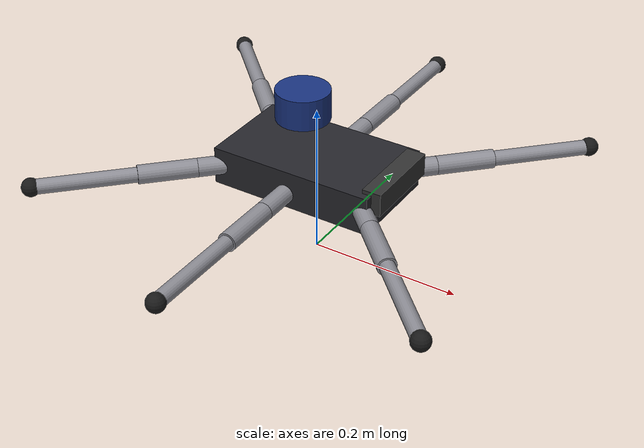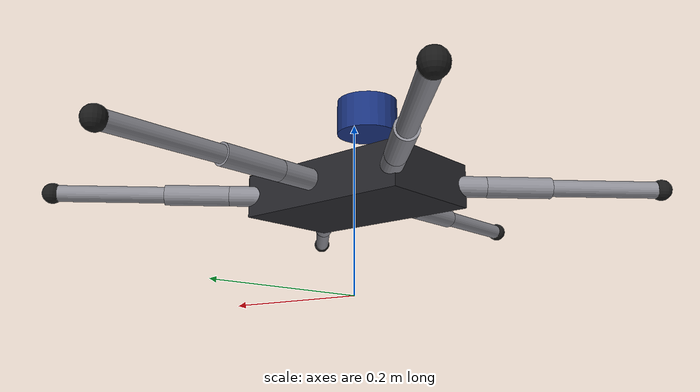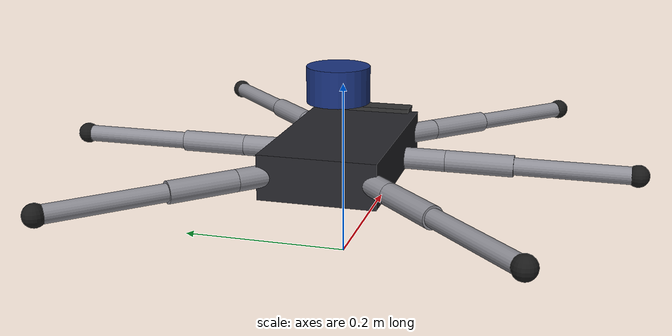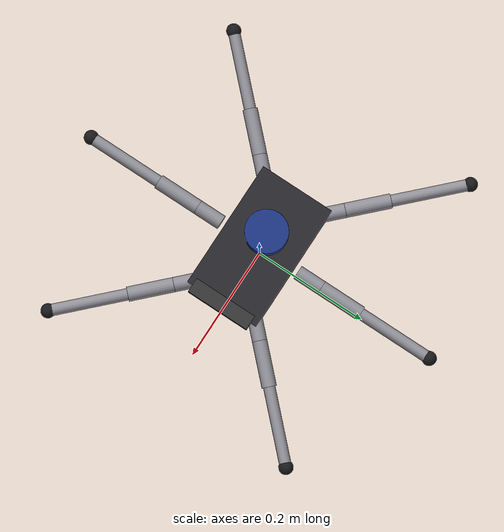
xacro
<?xml version="1.0"?>
<robot name="jethexa" xmlns:xacro="http://www.ros.org/wiki/xacro">

  <xacro:include filename="$(find jethexa_sim)/urdf/props.xacro"/>
  <xacro:include filename="$(find jethexa_sim)/urdf/leg.xacro"/>
  <xacro:include filename="$(find jethexa_sim)/urdf/sensors.xacro"/>

  <!-- ros2_control interface macros (defined before first use) -->
    <xacro:macro name="joint_iface" params="jname">
    <joint name="${jname}">
      <command_interface name="position">
        <param name="min">${-joint_limit}</param>
        <param name="max">${joint_limit}</param>
      </command_interface>
      <state_interface name="position"/>
      <state_interface name="velocity"/>
      <state_interface name="effort"/>
    </joint>
  </xacro:macro>
  <xacro:macro name="leg_ifaces" params="leg">
    <xacro:joint_iface jname="${leg}_coxa_joint"/>
    <xacro:joint_iface jname="${leg}_femur_joint"/>
    <xacro:joint_iface jname="${leg}_tibia_joint"/>
  </xacro:macro>

  <link name="base_footprint"/>

  <joint name="base_footprint_to_base" type="fixed">
    <parent link="base_footprint"/>
    <child link="base_link"/>
    <origin xyz="0 0 ${stand_height}" rpy="0 0 0"/>
  </joint>

  <link name="base_link">
    <visual>
      <geometry><box size="${body_x} ${body_y} ${body_z}"/></geometry>
      <material name="jethexa_body"><color rgba="0.15 0.15 0.17 1"/></material>
    </visual>
    <collision>
      <geometry><box size="${body_x} ${body_y} ${body_z}"/></geometry>
    </collision>
    <xacro:box_inertial m="${body_mass}" x="${body_x}" y="${body_y}" z="${body_z}"/>
  </link>

  <!-- leg name, mount x, mount y, mount yaw -->
  <xacro:leg name="lf" x="${mount_x}"  y="${mount_y}"  yaw="${radians(45)}"/>
  <xacro:leg name="lm" x="0"           y="${mid_y}"    yaw="${radians(90)}"/>
  <xacro:leg name="lr" x="${-mount_x}" y="${mount_y}"  yaw="${radians(135)}"/>
  <xacro:leg name="rf" x="${mount_x}"  y="${-mount_y}" yaw="${radians(-45)}"/>
  <xacro:leg name="rm" x="0"           y="${-mid_y}"   yaw="${radians(-90)}"/>
  <xacro:leg name="rr" x="${-mount_x}" y="${-mount_y}" yaw="${radians(-135)}"/>

  <xacro:jethexa_sensors/>

  <!-- ros2_control: 18 position-commanded joints -->
  <ros2_control name="JetHexaSystem" type="system">
    <hardware>
      <plugin>gz_ros2_control/GazeboSimSystem</plugin>
    </hardware>
    <xacro:leg_ifaces leg="lf"/>
    <xacro:leg_ifaces leg="lm"/>
    <xacro:leg_ifaces leg="lr"/>
    <xacro:leg_ifaces leg="rf"/>
    <xacro:leg_ifaces leg="rm"/>
    <xacro:leg_ifaces leg="rr"/>
  </ros2_control>

  <gazebo>
    <plugin filename="gz_ros2_control-system"
            name="gz_ros2_control::GazeboSimROS2ControlPlugin">
      <parameters>$(find jethexa_sim)/config/controllers.yaml</parameters>
    </plugin>
  </gazebo>

</robot>

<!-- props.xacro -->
<robot xmlns:xacro="http://www.ros.org/wiki/xacro">

  <!-- ==== PLACEHOLDER GEOMETRY - measure the real robot and replace ==== -->
  <xacro:property name="body_x"     value="0.220"/>   <!-- chassis length (m) -->
  <xacro:property name="body_y"     value="0.130"/>   <!-- chassis width  (m) -->
  <xacro:property name="body_z"     value="0.050"/>   <!-- chassis height (m) -->
  <xacro:property name="body_mass"  value="1.600"/>   <!-- kg, incl. Jetson + battery -->

  <xacro:property name="mount_x"    value="0.093"/>   <!-- front/rear coxa x offset -->
  <xacro:property name="mount_y"    value="0.050"/>   <!-- front/rear coxa y offset -->
  <xacro:property name="mid_y"      value="0.073"/>   <!-- middle coxa y offset -->

  <xacro:property name="coxa_len"   value="0.045"/>
  <xacro:property name="femur_len"  value="0.075"/>
  <xacro:property name="tibia_len"  value="0.130"/>
  <xacro:property name="seg_r"      value="0.012"/>   <!-- segment radius, visual -->
  <xacro:property name="foot_r"     value="0.012"/>

  <xacro:property name="coxa_mass"  value="0.060"/>
  <xacro:property name="femur_mass" value="0.070"/>
  <xacro:property name="tibia_mass" value="0.045"/>

  <!-- Spawn height: body clearance when legs are in the default stance. -->
  <xacro:property name="stand_height" value="0.120"/>

  <xacro:property name="joint_limit"    value="2.094"/>  <!-- rad, +/-120 deg -->
  <xacro:property name="joint_effort"   value="2.45"/>   <!-- N.m, running -->
  <xacro:property name="joint_velocity" value="5.82"/>   <!-- rad/s, no load -->
  <xacro:property name="joint_damping"  value="0.05"/>
  <xacro:property name="joint_friction" value="0.02"/>

  <!-- ==== inertia helpers ==== -->
  <xacro:macro name="box_inertial" params="m x y z">
    <inertial>
      <mass value="${m}"/>
      <inertia ixx="${m*(y*y+z*z)/12}" iyy="${m*(x*x+z*z)/12}" izz="${m*(x*x+y*y)/12}"
               ixy="0" ixz="0" iyz="0"/>
    </inertial>
  </xacro:macro>

  <!-- Thin rod of length l along +x, centred at l/2. -->
  <xacro:macro name="rod_inertial" params="m l r">
    <inertial>
      <origin xyz="${l/2} 0 0" rpy="0 0 0"/>
      <mass value="${m}"/>
      <inertia ixx="${m*r*r/2}" iyy="${m*(3*r*r+l*l)/12}" izz="${m*(3*r*r+l*l)/12}"
               ixy="0" ixz="0" iyz="0"/>
    </inertial>
  </xacro:macro>

</robot>

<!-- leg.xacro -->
<robot xmlns:xacro="http://www.ros.org/wiki/xacro">

  <xacro:macro name="leg" params="name x y yaw">

    <!-- coxa -->
    <joint name="${name}_coxa_joint" type="revolute">
      <parent link="base_link"/>
      <child  link="${name}_coxa_link"/>
      <origin xyz="${x} ${y} 0" rpy="0 0 ${yaw}"/>
      <axis xyz="0 0 1"/>
      <limit lower="${-joint_limit}" upper="${joint_limit}"
             effort="${joint_effort}" velocity="${joint_velocity}"/>
      <dynamics damping="${joint_damping}" friction="${joint_friction}"/>
    </joint>

    <link name="${name}_coxa_link">
      <visual>
        <origin xyz="${coxa_len/2} 0 0" rpy="0 ${pi/2} 0"/>
        <geometry><cylinder radius="${seg_r}" length="${coxa_len}"/></geometry>
        <material name="jethexa_leg"><color rgba="0.55 0.55 0.58 1"/></material>
      </visual>
      <collision name="${name}_coxa_collision">
        <origin xyz="${coxa_len/2} 0 0" rpy="0 ${pi/2} 0"/>
        <geometry><cylinder radius="${seg_r}" length="${coxa_len}"/></geometry>
      </collision>
      <xacro:rod_inertial m="${coxa_mass}" l="${coxa_len}" r="${seg_r}"/>
    </link>

    <!-- femur -->
    <joint name="${name}_femur_joint" type="revolute">
      <parent link="${name}_coxa_link"/>
      <child  link="${name}_femur_link"/>
      <origin xyz="${coxa_len} 0 0" rpy="0 0 0"/>
      <axis xyz="0 1 0"/>
      <limit lower="${-joint_limit}" upper="${joint_limit}"
             effort="${joint_effort}" velocity="${joint_velocity}"/>
      <dynamics damping="${joint_damping}" friction="${joint_friction}"/>
    </joint>

    <link name="${name}_femur_link">
      <visual>
        <origin xyz="${femur_len/2} 0 0" rpy="0 ${pi/2} 0"/>
        <geometry><cylinder radius="${seg_r}" length="${femur_len}"/></geometry>
        <material name="jethexa_leg"/>
      </visual>
      <collision name="${name}_femur_collision">
        <origin xyz="${femur_len/2} 0 0" rpy="0 ${pi/2} 0"/>
        <geometry><cylinder radius="${seg_r}" length="${femur_len}"/></geometry>
      </collision>
      <xacro:rod_inertial m="${femur_mass}" l="${femur_len}" r="${seg_r}"/>
    </link>

    <!-- tibia, with the foot as a second collision on the same link -->
    <joint name="${name}_tibia_joint" type="revolute">
      <parent link="${name}_femur_link"/>
      <child  link="${name}_tibia_link"/>
      <origin xyz="${femur_len} 0 0" rpy="0 0 0"/>
      <axis xyz="0 1 0"/>
      <limit lower="${-joint_limit}" upper="${joint_limit}"
             effort="${joint_effort}" velocity="${joint_velocity}"/>
      <dynamics damping="${joint_damping}" friction="${joint_friction}"/>
    </joint>

    <link name="${name}_tibia_link">
      <visual>
        <origin xyz="${tibia_len/2} 0 0" rpy="0 ${pi/2} 0"/>
        <geometry><cylinder radius="${seg_r*0.8}" length="${tibia_len}"/></geometry>
        <material name="jethexa_leg"/>
      </visual>
      <collision name="${name}_shin_collision">
        <origin xyz="${tibia_len/2} 0 0" rpy="0 ${pi/2} 0"/>
        <geometry><cylinder radius="${seg_r*0.8}" length="${tibia_len}"/></geometry>
      </collision>

      <!-- foot: the only geometry that should normally touch the ground -->
      <visual>
        <origin xyz="${tibia_len} 0 0" rpy="0 0 0"/>
        <geometry><sphere radius="${foot_r}"/></geometry>
        <material name="jethexa_foot"><color rgba="0.1 0.1 0.1 1"/></material>
      </visual>
      <collision name="${name}_foot_collision">
        <origin xyz="${tibia_len} 0 0" rpy="0 0 0"/>
        <geometry><sphere radius="${foot_r}"/></geometry>
      </collision>

      <xacro:rod_inertial m="${tibia_mass}" l="${tibia_len}" r="${seg_r*0.8}"/>
    </link>

  </xacro:macro>
</robot>

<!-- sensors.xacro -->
<robot xmlns:xacro="http://www.ros.org/wiki/xacro">

  <xacro:macro name="jethexa_sensors">

    <!-- ================= 2D LIDAR ================= -->
    <joint name="lidar_joint" type="fixed">
      <parent link="base_link"/>
      <child  link="lidar_link"/>
      <origin xyz="-0.020 0 ${body_z/2 + 0.060}" rpy="0 0 0"/>
    </joint>

    <!-- Keep this link separate through URDF->SDF conversion, so the sensor
         sits on its own frame instead of being folded into the chassis. -->
    <gazebo reference="lidar_joint">
      <disableFixedJointLumping>true</disableFixedJointLumping>
      <preserveFixedJoint>true</preserveFixedJoint>
    </gazebo>

    <link name="lidar_link">
      <visual>
        <geometry><cylinder radius="0.035" length="0.040"/></geometry>
        <material name="lidar_blue"><color rgba="0.1 0.2 0.5 1"/></material>
      </visual>
      <collision name="lidar_collision">
        <geometry><cylinder radius="0.035" length="0.040"/></geometry>
      </collision>
      <inertial>
        <mass value="0.18"/>
        <inertia ixx="8e-5" iyy="8e-5" izz="1.1e-4" ixy="0" ixz="0" iyz="0"/>
      </inertial>
    </link>

    <gazebo reference="lidar_link">
      <sensor name="lidar" type="gpu_lidar">
        <topic>scan</topic>
        <gz_frame_id>lidar_link</gz_frame_id>
        <always_on>1</always_on>
        <visualize>false</visualize>
        <update_rate>10</update_rate>
        <lidar>
          <scan>
            <horizontal>
              <samples>720</samples>
              <resolution>1</resolution>
              <min_angle>-3.14159</min_angle>
              <max_angle>3.14159</max_angle>
            </horizontal>
            <vertical>
              <samples>1</samples>
              <resolution>1</resolution>
              <min_angle>0</min_angle>
              <max_angle>0</max_angle>
            </vertical>
          </scan>
          <range>
            <min>0.12</min>
            <max>10.0</max>
            <resolution>0.01</resolution>
          </range>
          <noise>
            <type>gaussian</type>
            <mean>0.0</mean>
            <stddev>0.01</stddev>
          </noise>
        </lidar>
      </sensor>
    </gazebo>

    <!-- ================= DEPTH CAMERA ================= -->
    <joint name="camera_joint" type="fixed">
      <parent link="base_link"/>
      <child  link="camera_link"/>
      <origin xyz="${body_x/2} 0 0.015" rpy="0 0 0"/>
    </joint>

    <!-- Keep this link separate through URDF->SDF conversion, so the sensor
         sits on its own frame instead of being folded into the chassis. -->
    <gazebo reference="camera_joint">
      <disableFixedJointLumping>true</disableFixedJointLumping>
      <preserveFixedJoint>true</preserveFixedJoint>
    </gazebo>

    <link name="camera_link">
      <visual>
        <geometry><box size="0.025 0.110 0.030"/></geometry>
        <material name="camera_grey"><color rgba="0.2 0.2 0.2 1"/></material>
      </visual>
      <collision name="camera_collision">
        <geometry><box size="0.025 0.110 0.030"/></geometry>
      </collision>
      <inertial>
        <mass value="0.12"/>
        <inertia ixx="1.3e-4" iyy="2e-5" izz="1.3e-4" ixy="0" ixz="0" iyz="0"/>
      </inertial>
    </link>

    <!-- REP-103 optical frame (z forward, x right) for image consumers -->
    <joint name="camera_optical_joint" type="fixed">
      <parent link="camera_link"/>
      <child  link="camera_optical_frame"/>
      <origin xyz="0 0 0" rpy="${-pi/2} 0 ${-pi/2}"/>
    </joint>
    <link name="camera_optical_frame"/>

    <gazebo reference="camera_link">
      <!-- RGB and depth are separate sensors in gz-sim. -->
      <sensor name="rgb_camera" type="camera">
        <topic>rgb_camera</topic>
        <gz_frame_id>camera_optical_frame</gz_frame_id>
        <always_on>1</always_on>
        <update_rate>15</update_rate>
        <camera>
          <horizontal_fov>1.047</horizontal_fov>
          <image>
            <width>640</width>
            <height>480</height>
            <format>R8G8B8</format>
          </image>
          <clip>
            <near>0.05</near>
            <far>15.0</far>
          </clip>
        </camera>
      </sensor>

      <sensor name="depth_camera" type="depth_camera">
        <topic>depth_camera</topic>
        <gz_frame_id>camera_optical_frame</gz_frame_id>
        <always_on>1</always_on>
        <update_rate>15</update_rate>
        <camera>
          <horizontal_fov>1.047</horizontal_fov>
          <image>
            <width>640</width>
            <height>480</height>
            <format>R_FLOAT32</format>
          </image>
          <clip>
            <near>0.3</near>
            <far>8.0</far>
          </clip>
        </camera>
      </sensor>
    </gazebo>

    <!-- ================= IMU ================= -->
    <joint name="imu_joint" type="fixed">
      <parent link="base_link"/>
      <child  link="imu_link"/>
      <origin xyz="0 0 ${body_z/2}" rpy="0 0 0"/>
    </joint>

    <!-- Keep this link separate through URDF->SDF conversion, so the sensor
         sits on its own frame instead of being folded into the chassis. -->
    <gazebo reference="imu_joint">
      <disableFixedJointLumping>true</disableFixedJointLumping>
      <preserveFixedJoint>true</preserveFixedJoint>
    </gazebo>

    <link name="imu_link">
      <inertial>
        <mass value="0.01"/>
        <inertia ixx="1e-7" iyy="1e-7" izz="1e-7" ixy="0" ixz="0" iyz="0"/>
      </inertial>
    </link>

    <gazebo reference="imu_link">
      <sensor name="imu" type="imu">
        <topic>imu</topic>
        <gz_frame_id>imu_link</gz_frame_id>
        <always_on>1</always_on>
        <update_rate>100</update_rate>
        <imu>
          <angular_velocity>
            <x><noise type="gaussian"><mean>0.0</mean><stddev>2e-3</stddev></noise></x>
            <y><noise type="gaussian"><mean>0.0</mean><stddev>2e-3</stddev></noise></y>
            <z><noise type="gaussian"><mean>0.0</mean><stddev>2e-3</stddev></noise></z>
          </angular_velocity>
          <linear_acceleration>
            <x><noise type="gaussian"><mean>0.0</mean><stddev>1.7e-2</stddev></noise></x>
            <y><noise type="gaussian"><mean>0.0</mean><stddev>1.7e-2</stddev></noise></y>
            <z><noise type="gaussian"><mean>0.0</mean><stddev>1.7e-2</stddev></noise></z>
          </linear_acceleration>
        </imu>
      </sensor>
    </gazebo>

  </xacro:macro>
</robot>
